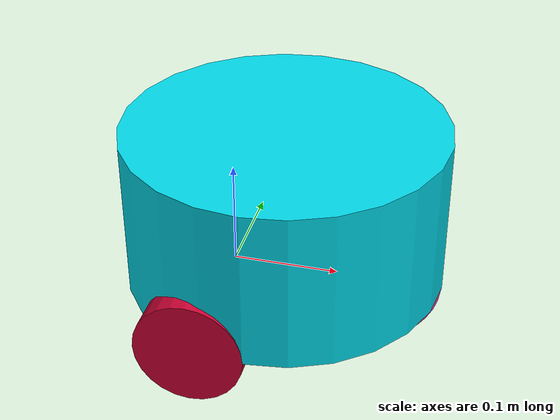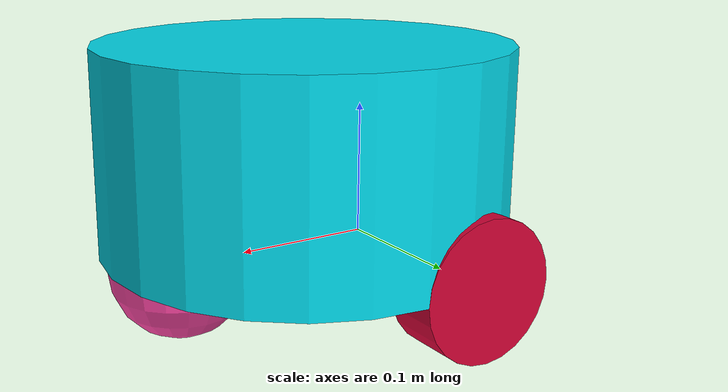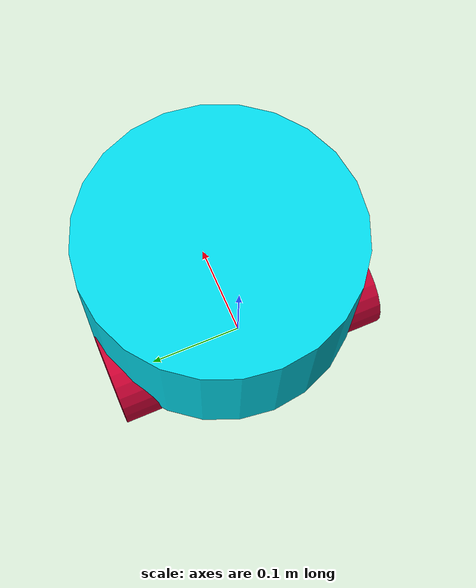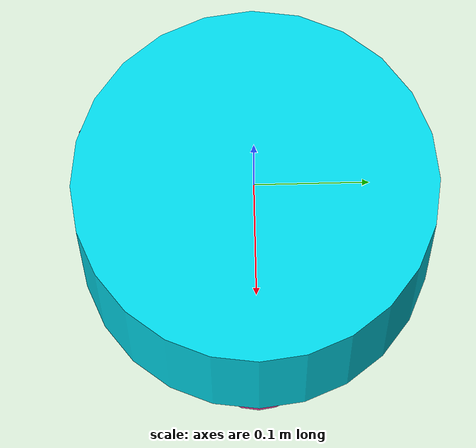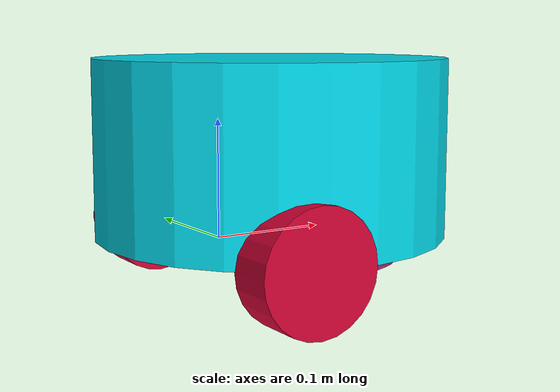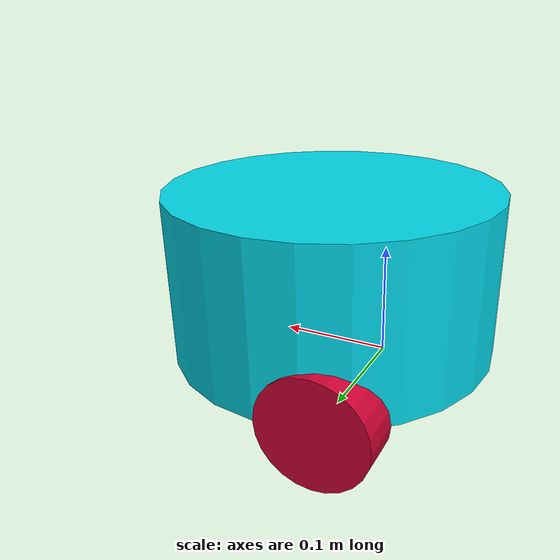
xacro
<?xml version="1.0"?>
<robot xmlns:xacro="http://www.ros.org/wiki/xacro">

    <xacro:include filename="materials.urdf.xacro"/>
    <xacro:include filename="inertial_macros.xacro"/>

    <link name="base_link">
    </link>

    <joint name="chassis_joint" type="fixed">
        <parent link="base_link"/>
        <child link="chassis_link"/>
        <origin xyz="-0.1 0 0"/>
    </joint>

    <link name="chassis_link">
        <visual>
            <origin xyz="0.15 0 0.075"/>
            <geometry>
                <cylinder radius="0.15" length="0.15"/>
            </geometry>
            <material name="aquablue"/>
        </visual>
        <collision>
            <origin xyz="0.15 0 0.075"/>
            <geometry>
                <cylinder radius="0.15" length="0.15"/>
            </geometry>
        </collision>
        <xacro:inertial_cylinder mass="0.5" radius="0.15" length="0.15">
            <origin xyz="0.15 0 0.075" rpy="0 0 0"/>
        </xacro:inertial_cylinder>
    </link>

    <gazebo reference="chassis_link">
        <material>Gazebo/Red</material>
    </gazebo>

    <joint name="left_wheel_joint" type="continuous">
        <parent link="base_link"/>
        <child link="left_wheel_link"/>
        <origin xyz="0 0.13 0" rpy="-${pi/2} 0 0"/>
        <axis xyz="0 0 1"/>
    </joint>

    <link name="left_wheel_link">
        <visual>
        <geometry>
            <cylinder radius="0.05" length="0.04"/>
        </geometry>
        <material name="cherry"/>
        </visual>
        <collision>
        <geometry>
            <cylinder radius="0.05" length="0.04"/>
        </geometry>
        </collision>
        <xacro:inertial_cylinder mass="0.1" radius="0.05" length="0.04">
            <origin xyz="0 0 0" rpy="0 0 0"/>
        </xacro:inertial_cylinder>
    </link>

    <gazebo reference="left_wheel_link">
        <material>Gazebo/Yellow</material>
    </gazebo>

    <joint name="right_wheel_joint" type="continuous">
        <parent link="base_link"/>
        <child link="right_wheel_link"/>
        <origin xyz="0 -0.13 0" rpy="${pi/2} 0 0"/>
        <axis xyz="0 0 -1"/>
    </joint>

    <link name="right_wheel_link">
        <visual>
        <geometry>
            <cylinder radius="0.05" length="0.04"/>
        </geometry>
        <material name="cherry"/>
        </visual>
        <collision>
        <geometry>
            <cylinder radius="0.05" length="0.04"/>
        </geometry>
        </collision>
        <xacro:inertial_cylinder mass="0.1" radius="0.05" length="0.04">
            <origin xyz="0 0 0" rpy="0 0 0"/>
        </xacro:inertial_cylinder>
    </link>

    <gazebo reference="right_wheel_link">
        <material>Gazebo/Yellow</material>
    </gazebo>

    <joint name="caster_joint" type="fixed">
        <parent link="base_link"/>
        <child link ="caster_link"/>
        <origin xyz="0.15 0 0"/>
    </joint>

    <link name="caster_link">
        <visual>
        <geometry>
            <sphere radius="0.05"/>
        </geometry>
        <material name="barbiepink"/>
        </visual>
        <collision>
        <geometry>
            <sphere radius="0.05"/>
        </geometry>
        </collision>
        <xacro:inertial_sphere mass="0.1" radius="0.05">
            <origin xyz="0 0 0" rpy="0 0 0"/>
        </xacro:inertial_sphere>
    </link>

    <gazebo reference="caster_link">
        <material>Gazebo/Black</material>
        <mu1 value="0.000001"/>
        <mu2 value="0.00001"/>
    </gazebo>

</robot>
